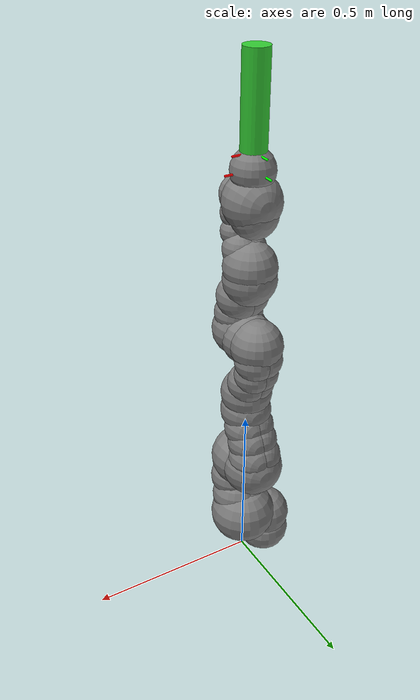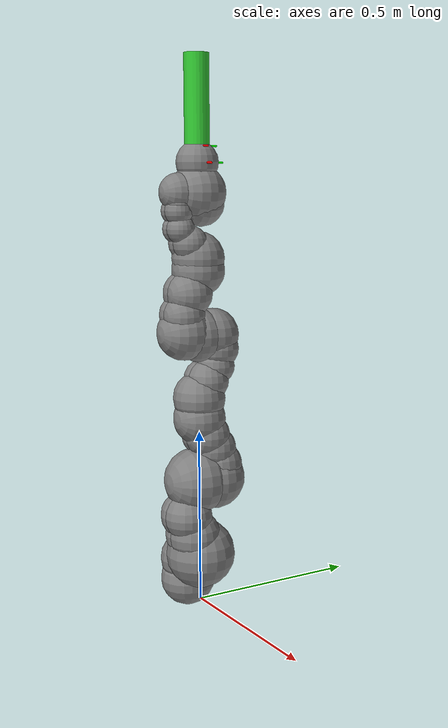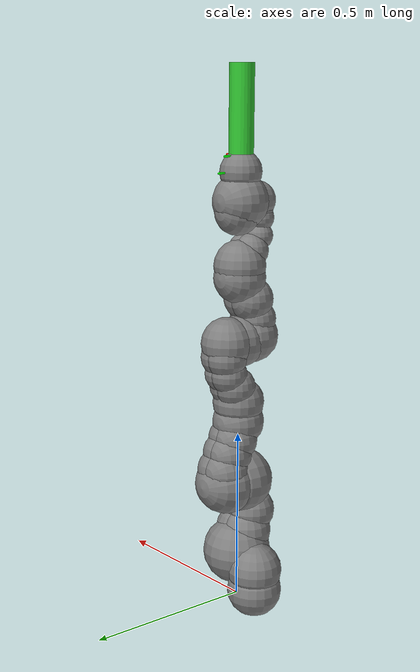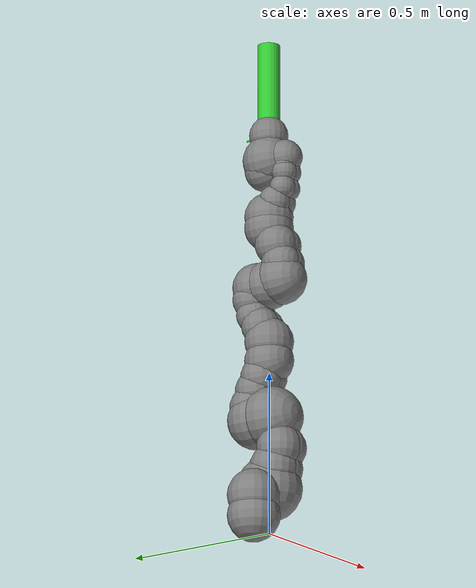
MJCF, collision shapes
<mujoco model="iiwa14">
  <compiler angle="radian" meshdir="assets" autolimits="true"/>

  <option integrator="implicitfast"/>

  <default>
    <default class="iiwa">
      <material specular="0.5" shininess="0.25"/>
      <joint axis="0 0 1"/>
      <general gaintype="fixed" biastype="affine" gainprm="2000" biasprm="0 -2000 -200"/>
      <default class="joint1">
        <joint range="-2.96706 2.96706"/>
        <general ctrlrange="-2.96706 2.96706"/>
        <default class="joint2">
          <joint range="-2.0944 2.0944"/>
          <general ctrlrange="-2.0944 2.0944"/>
        </default>
      </default>
      <default class="joint3">
        <joint range="-3.05433 3.05433"/>
        <general ctrlrange="-3.05433 3.05433"/>
      </default>
      <default class="visual">
        <geom type="mesh" contype="0" conaffinity="0" group="2" material="gray"/>
      </default>
      <default class="collision">
        <geom group="3"/>
      </default>
      <site size="0.001" rgba="1 0 0 1" group="4"/>
    </default>
  </default>

  <asset>
    <material class="iiwa" name="gray" rgba="0.4 0.4 0.4 1"/>
    <material class="iiwa" name="light_gray" rgba="0.6 0.6 0.6 1"/>
    <material class="iiwa" name="black" rgba="0 0 0 1"/>
    <material class="iiwa" name="orange" rgba="1 0.423529 0.0392157 1"/>

    <mesh file="link_0.obj"/>
    <mesh file="link_1.obj"/>
    <mesh file="link_2_orange.obj"/>
    <mesh file="link_2_grey.obj"/>
    <mesh file="link_3.obj"/>
    <mesh file="band.obj"/>
    <mesh file="kuka.obj"/>
    <mesh file="link_4_orange.obj"/>
    <mesh file="link_4_grey.obj"/>
    <mesh file="link_5.obj"/>
    <mesh file="link_6_orange.obj"/>
    <mesh file="link_6_grey.obj"/>
    <mesh file="link_7.obj"/>
  <mesh name="tool_mesh" file="driller.obj"/>
  </asset>

  <worldbody>
    <light name="top" pos="0 0 2" mode="trackcom"/>
    <body name="base" childclass="iiwa">
      <inertial mass="5" pos="-0.1 0 0.07" diaginertia="0.05 0.06 0.03"/>
      <geom class="visual" mesh="link_0"/>
      <geom class="collision" size="0.08" pos="-0.08 0 0.103"/>
      <geom class="collision" size="0.08" pos="-0.08 0 0.04"/>
      <geom class="collision" size="0.1" pos="0 0 0.14"/>
      <body name="link1" pos="0 0 0.1575">
        <inertial mass="5.76" pos="0 -0.03 0.12" diaginertia="0.0333 0.033 0.0123"/>
        <joint name="joint1" class="joint1"/>
        <geom class="visual" mesh="link_1"/>
        <geom class="collision" size="0.08" pos="0 0 -0.0005"/>
        <geom class="collision" size="0.075" pos="0.01 -0.025 0.0425"/>
        <geom class="collision" size="0.075" pos="-0.01 -0.025 0.0425"/>
        <geom class="collision" size="0.07" pos="0.01 -0.045 0.1025"/>
        <geom class="collision" size="0.07" pos="-0.01 -0.045 0.1025"/>
        <body name="link2" pos="0 0 0.2025" quat="0 0 1 1">
          <inertial mass="6.35" pos="0.0003 0.059 0.042" diaginertia="0.0305 0.0304 0.011" quat="0 0 1 1"/>
          <joint name="joint2" class="joint2"/>
          <geom class="visual" material="orange" mesh="link_2_orange"/>
          <geom class="visual" mesh="link_2_grey"/>
          <geom class="collision" size="0.095" pos="0 0 -0.01"/>
          <geom class="collision" size="0.09" pos="0 0 0.045"/>
          <geom class="collision" size="0.07" pos="-0.01 0.04 0.054"/>
          <geom class="collision" size="0.065" pos="-0.01 0.09 0.04"/>
          <geom class="collision" size="0.065" pos="-0.01 0.13 0.02"/>
          <geom class="collision" size="0.07" pos="0.01 0.04 0.054"/>
          <geom class="collision" size="0.065" pos="0.01 0.09 0.04"/>
          <geom class="collision" size="0.065" pos="0.01 0.13 0.02"/>
          <geom class="collision" size="0.075" pos="0 0.18 0"/>
          <body name="link3" pos="0 0.2045 0" quat="0 0 1 1">
            <inertial mass="3.5" pos="0 0.03 0.13" diaginertia="0.025 0.0238 0.0076"/>
            <joint name="joint3" class="joint1"/>
            <geom class="visual" mesh="link_3"/>
            <geom class="visual" material="light_gray" mesh="band"/>
            <geom class="visual" material="black" mesh="kuka"/>
            <geom class="collision" size="0.075" pos="0 0 0.0355"/>
            <geom class="collision" size="0.06" pos="0.01 0.023 0.0855"/>
            <geom class="collision" size="0.055" pos="0.01 0.048 0.1255"/>
            <geom class="collision" size="0.06" pos="0.01 0.056 0.1755"/>
            <geom class="collision" size="0.06" pos="-0.01 0.023 0.0855"/>
            <geom class="collision" size="0.055" pos="-0.01 0.048 0.1255"/>
            <geom class="collision" size="0.06" pos="-0.01 0.056 0.1755"/>
            <geom class="collision" size="0.075" pos="0 0.045 0.2155"/>
            <geom class="collision" size="0.075" pos="0 0 0.2155"/>
            <body name="link4" pos="0 0 0.2155" quat="1 1 0 0">
              <inertial mass="3.5" pos="0 0.067 0.034" diaginertia="0.017 0.0164 0.006" quat="1 1 0 0"/>
              <joint name="joint4" class="joint2"/>
              <geom class="visual" material="orange" mesh="link_4_orange"/>
              <geom class="visual" mesh="link_4_grey"/>
              <geom class="collision" size="0.078" pos="0 0.01 0.046"/>
              <geom class="collision" size="0.06" pos="0.01 0.06 0.052"/>
              <geom class="collision" size="0.065" pos="0.01 0.12 0.034"/>
              <geom class="collision" size="0.06" pos="-0.01 0.06 0.052"/>
              <geom class="collision" size="0.065" pos="-0.01 0.12 0.034"/>
              <geom class="collision" size="0.075" pos="0 0.184 0"/>
              <body name="link5" pos="0 0.1845 0" quat="0 0 1 1">
                <inertial mass="3.5" pos="0.0001 0.021 0.076" diaginertia="0.01 0.0087 0.00449"/>
                <joint name="joint5" class="joint1"/>
                <geom class="visual" mesh="link_5"/>
                <geom class="visual" material="light_gray" mesh="band"/>
                <geom class="visual" material="black" mesh="kuka"/>
                <geom class="collision" size="0.075" pos="0 0 0.0335"/>
                <geom class="collision" size="0.05" pos="-0.012 0.031 0.0755"/>
                <geom class="collision" size="0.05" pos="0.012 0.031 0.0755"/>
                <geom class="collision" size="0.04" pos="-0.012 0.06 0.1155"/>
                <geom class="collision" size="0.04" pos="0.012 0.06 0.1155"/>
                <geom class="collision" size="0.04" pos="-0.01 0.065 0.1655"/>
                <geom class="collision" size="0.04" pos="0.01 0.065 0.1655"/>
                <geom class="collision" size="0.035" pos="-0.012 0.065 0.1855"/>
                <geom class="collision" size="0.035" pos="0.012 0.065 0.1855"/>
                <body name="link6" pos="0 0 0.2155" quat="1 1 0 0">
                  <inertial mass="1.8" pos="0 0.0006 0.0004" diaginertia="0.0049 0.0047 0.0036" quat="1 1 0 0"/>
                  <joint name="joint6" class="joint2"/>
                  <geom class="visual" material="orange" mesh="link_6_orange"/>
                  <geom class="visual" mesh="link_6_grey"/>
                  <geom class="collision" size="0.055" pos="0 0 -0.059"/>
                  <geom class="collision" size="0.065" pos="0 -0.03 0.011"/>
                  <geom class="collision" size="0.08"/>
                  <body name="link7" pos="0 0.081 0" quat="0 0 1 1">
                    <inertial mass="1.2" pos="0 0 0.02" diaginertia="0.001 0.001 0.001"/>
                    <!-- Reference frame: wrist_3_link -->
                    <geom type="capsule" fromto="0 0 0 0.08 0 0" rgba="1 0 0 1" size="0.003" contype="0" conaffinity="0"/>
                    <geom type="capsule" fromto="0 0 0 0 0.08 0" rgba="0 1 0 1" size="0.003" contype="0" conaffinity="0"/>
                    <geom type="capsule" fromto="0 0 0 0 0 0.08" rgba="0 0 1 1" size="0.003" contype="0" conaffinity="0"/>
                    <joint name="joint7" class="joint3"/>
                    <geom class="visual" mesh="link_7"/>
                    <geom class="collision" size="0.06" pos="0 0 0.001"/>
                    <site pos="0 0 0.045" name="attachment_site"/>
                    <geom type="capsule" fromto="0 0 0 0.05 0 0" rgba="1 0 0 1" size="0.002" contype="0" conaffinity="0"/>
                    <geom type="capsule" fromto="0 0 0 0 0.05 0" rgba="0 1 0 1" size="0.002" contype="0" conaffinity="0"/>
                    <geom type="capsule" fromto="0 0 0 0 0 0.05" rgba="0 0 1 1" size="0.002" contype="0" conaffinity="0"/>
                    <body name="ee_frame_visual_only" pos="0 0 0.045">
                      <geom type="capsule" fromto="0 0 0 0.05 0 0" rgba="1 0 0 1" size="0.002" contype="0" conaffinity="0"/>
                      <geom type="capsule" fromto="0 0 0 0 0.05 0" rgba="0 1 0 1" size="0.002" contype="0" conaffinity="0"/>
                      <geom type="capsule" fromto="0 0 0 0 0 0.05" rgba="0 0 1 1" size="0.002" contype="0" conaffinity="0"/>
                      <!-- The tool is imported by a python code -->

                      <!-- Reference frame attached @ tool tip for screwing (T) -->
                      <body name="tool_frame" pos="0 0 0" quat="1 0 0 0">
                        <site name="tool_site" pos="0 0 0" quat="1 0 0 0"/>
                        <geom type="capsule" fromto="0 0 0 0.06 0 0" rgba="1 0 0 1" size="0.003" contype="0" conaffinity="0"/>
                        <geom type="capsule" fromto="0 0 0 0 0.06 0" rgba="0 1 0 1" size="0.003" contype="0" conaffinity="0"/>
                        <geom type="capsule" fromto="0 0 0 0 0 0.06" rgba="0 0 1 1" size="0.003" contype="0" conaffinity="0"/>
                    </body>
                  <body name="tool_top" pos="0 0 0">
      <inertial mass="3.75" pos="0 0 0.1" diaginertia="0.021 0.021 0.003"/>
      <geom type="mesh" mesh="tool_mesh" rgba="0.2 0.2 0.2 1" contype="0" conaffinity="0" group="0"/>
      <!-- collision cylinder -->
      <geom name="driller" type="cylinder" size="0.035 0.125" pos="0 0 0.125" rgba="0.2 0.8 0.2 1" contype="1" conaffinity="1" group="3"/>
      <!-- Marker (red sphere) to specify the origin -->
      <site name="mount_site" pos="0 0 0" size="0.005" rgba="1 0 0 1"/>
      <!-- Marker (green sphere) to specify the point of application of the weight -->
      <geom type="sphere" size="0.005" pos="0 0 0.1" rgba="0 1 0 1" contype="0" conaffinity="0" group="2"/>
    </body>
  </body>
                  </body>
                </body>
              </body>
            </body>
          </body>
        </body>
      </body>
    </body>
  </worldbody>

  <contact>
    <exclude body1="base" body2="link1"/>
    <exclude body1="base" body2="link2"/>
    <exclude body1="base" body2="link3"/>
    <exclude body1="link1" body2="link3"/>
    <exclude body1="link3" body2="link5"/>
    <exclude body1="link4" body2="link7"/>
    <exclude body1="link5" body2="link7"/>
  </contact>

  <actuator>
    <motor joint="joint1" gear="1"/>
    <motor joint="joint2" gear="1"/>
    <motor joint="joint3" gear="1"/>
    <motor joint="joint4" gear="1"/>
    <motor joint="joint5" gear="1"/>
    <motor joint="joint6" gear="1"/>
    <motor joint="joint7" gear="1"/>
  </actuator>

  <keyframe>
    <key name="home" qpos="0 0.785398 0 -1.5708 0 0 0" ctrl="0 0.785398 0 -1.5708 0 0 0"/>
  </keyframe>
</mujoco>
